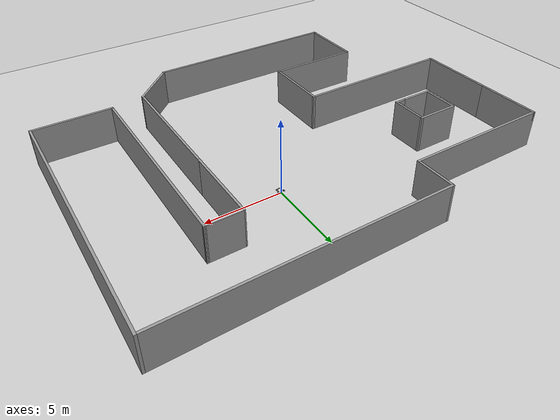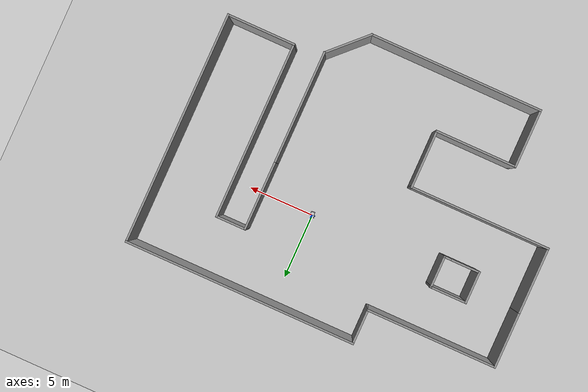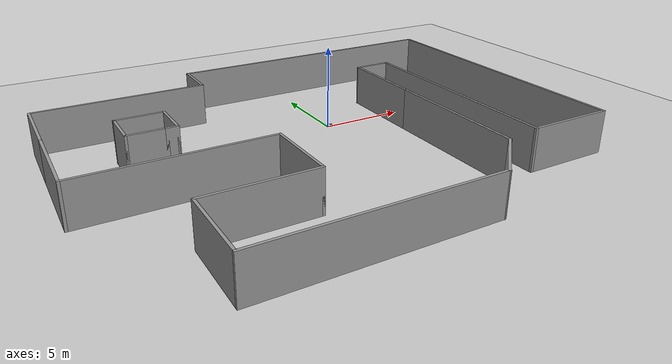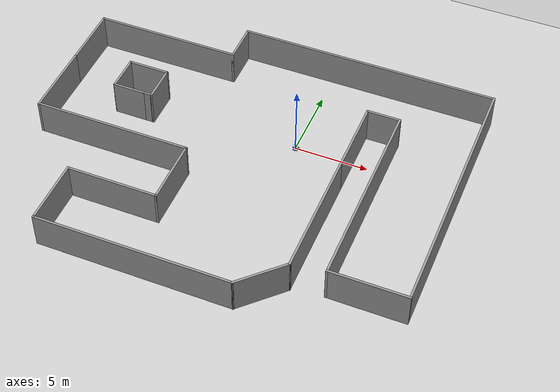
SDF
<sdf version="1.6">
 <world name="default">
  <light name="sun" type="directional">
   <pose>0 0 10 0 -0 0</pose>
   <diffuse>0.8 0.8 0.8 1</diffuse>
   <specular>0.2 0.2 0.2 1</specular>
   <attenuation>
    <range>1000</range>
    <constant>0.9</constant>
    <linear>0.01</linear>
    <quadratic>0.001</quadratic>
   </attenuation>
   <direction>-0.5 0.1 -0.9</direction>
  </light>
  <model name="ground_plane">
   <static>1</static>
   <link name="link">
    <collision name="collision">
     <geometry><plane><normal>0 0 1</normal><size>100 100</size></plane></geometry>
     <surface>
      <contact><collide_bitmask>65535</collide_bitmask></contact>
      <friction><ode><mu>100</mu><mu2>50</mu2></ode></friction>
     </surface>
    </collision>
    <visual name="visual">
     <cast_shadows>0</cast_shadows>
     <geometry><plane><normal>0 0 1</normal><size>100 100</size></plane></geometry>
     <material>
      <script><uri>file://media/materials/scripts/gazebo.material</uri><name>Gazebo/Grey</name></script>
     </material>
    </visual>
   </link>
  </model>
  <gravity>0 0 -9.8</gravity>
  <magnetic_field>6e-06 2.3e-05 -4.2e-05</magnetic_field>
  <atmosphere type="adiabatic"/>
  <physics name="default_physics" default="0" type="ode">
   <max_step_size>0.001</max_step_size>
   <real_time_factor>1</real_time_factor>
   <real_time_update_rate>1000</real_time_update_rate>
  </physics>
  <scene><ambient>0.4 0.4 0.4 1</ambient><background>0.7 0.7 0.7 1</background><shadows>1</shadows></scene>
  <audio><device>default</device></audio>
  <spherical_coordinates>
   <surface_model>EARTH_WGS84</surface_model>
   <latitude_deg>0</latitude_deg>
   <longitude_deg>0</longitude_deg>
   <elevation>0</elevation>
   <heading_deg>0</heading_deg>
  </spherical_coordinates>
  <model name="scuttle">
   <link name="base_link">
    <inertial>
     <pose>-0 0.022172 0.019464 0 -0 0</pose>
     <mass>3.90696</mass>
     <inertia>
      <ixx>0.0711158</ixx>
      <ixy>-8.93689e-18</ixy>
      <ixz>-3.32138e-18</ixz>
      <iyy>0.0440071</iyy>
      <iyz>-0.00388226</iyz>
      <izz>0.111021</izz>
     </inertia>
    </inertial>
    <collision name="base_link_collision">
     <geometry>
      <mesh>
       <scale>0.001 0.001 0.001</scale>
       <uri>/home/ros/catkin_ws/src/scuttle_description/meshes/base_link.stl</uri>
      </mesh>
     </geometry>
     <surface><friction><ode><mu>0.1</mu><mu2>0.1</mu2></ode></friction></surface>
    </collision>
    <collision name="base_link_fixed_joint_lump__lidar_1_collision_1">
     <pose>-0.13695 0.13695 0.001 0 0 -1.5708</pose>
     <geometry>
      <mesh>
       <scale>0.001 0.001 0.001</scale>
       <uri>/home/ros/catkin_ws/src/scuttle_description/meshes/lidar_1.stl</uri>
      </mesh>
     </geometry>
     <surface><friction><ode><mu>0.2</mu><mu2>0.2</mu2></ode></friction></surface>
    </collision>
    <visual name="base_link_visual">
     <geometry>
      <mesh>
       <scale>0.001 0.001 0.001</scale>
       <uri>/home/ros/catkin_ws/src/scuttle_description/meshes/base_link.stl</uri>
      </mesh>
     </geometry>
     <material>
      <script><name>Gazebo/Silver</name><uri>file://media/materials/scripts/gazebo.material</uri></script>
     </material>
    </visual>
    <visual name="base_link_fixed_joint_lump__lidar_1_visual_1">
     <pose>-0.13695 0.13695 0.001 0 0 -1.5708</pose>
     <geometry>
      <mesh>
       <scale>0.001 0.001 0.001</scale>
       <uri>/home/ros/catkin_ws/src/scuttle_description/meshes/lidar_1.stl</uri>
      </mesh>
     </geometry>
     <material>
      <script><name>Gazebo/Gray</name><uri>file://media/materials/scripts/gazebo.material</uri></script>
     </material>
    </visual>
    <self_collide>1</self_collide>
    <sensor name="head_hokuyo_sensor" type="gpu_ray">
     <visualize>1</visualize>
     <update_rate>15</update_rate>
     <ray>
      <scan>
       <horizontal>
        <samples>810</samples>
        <resolution>1</resolution>
        <min_angle>-2.35619</min_angle>
        <max_angle>2.35619</max_angle>
       </horizontal>
      </scan>
      <range><min>0.5</min><max>30</max><resolution>0.33</resolution></range>
      <noise><type>gaussian</type><mean>0</mean><stddev>0.01</stddev></noise>
     </ray>
     <plugin name="gazebo_ros_head_hokuyo_controller" filename="libgazebo_ros_gpu_laser.so">
      <topicName>/scan</topicName>
      <frameName>lidar_1</frameName>
      <robotNamespace>/</robotNamespace>
     </plugin>
     <pose>0 0.13695 0.031 0 0 -1.5708</pose>
    </sensor>
   </link>
   <link name="left_wheel_1">
    <pose>0.1524 0.1054 -0.028 0 -0 0</pose>
    <inertial>
     <pose>0.037125 0 0 0 -0 0</pose>
     <mass>0.553601</mass>
     <inertia>
      <ixx>0.000476</ixx>
      <ixy>0</ixy>
      <ixz>0</ixz>
      <iyy>0.000492</iyy>
      <iyz>0</iyz>
      <izz>0.000492</izz>
     </inertia>
    </inertial>
    <collision name="left_wheel_1_collision">
     <pose>-0.1524 -0.1054 0.028 0 -0 0</pose>
     <geometry>
      <mesh>
       <scale>0.001 0.001 0.001</scale>
       <uri>/home/ros/catkin_ws/src/scuttle_description/meshes/left_wheel_1.stl</uri>
      </mesh>
     </geometry>
     <surface><friction><ode><mu>0.9</mu><mu2>0.9</mu2></ode></friction></surface>
    </collision>
    <visual name="left_wheel_1_visual">
     <pose>-0.1524 -0.1054 0.028 0 -0 0</pose>
     <geometry>
      <mesh>
       <scale>0.001 0.001 0.001</scale>
       <uri>/home/ros/catkin_ws/src/scuttle_description/meshes/left_wheel_1.stl</uri>
      </mesh>
     </geometry>
     <material>
      <script><name>Gazebo/Blue</name><uri>file://media/materials/scripts/gazebo.material</uri></script>
     </material>
    </visual>
    <self_collide>1</self_collide>
   </link>
   <joint name="Rev4" type="revolute">
    <child>left_wheel_1</child>
    <parent>base_link</parent>
    <axis>
     <xyz>1 0 0</xyz>
     <limit><lower>-1e+16</lower><upper>1e+16</upper></limit>
     <dynamics><spring_reference>0</spring_reference><spring_stiffness>0</spring_stiffness></dynamics>
     <use_parent_model_frame>1</use_parent_model_frame>
    </axis>
   </joint>
   <link name="right_wheel_1">
    <pose>-0.1524 0.1054 -0.028 0 -0 0</pose>
    <inertial>
     <pose>-0.037125 0 0 0 -0 0</pose>
     <mass>0.553601</mass>
     <inertia>
      <ixx>0.000476</ixx>
      <ixy>-0</ixy>
      <ixz>0</ixz>
      <iyy>0.000492</iyy>
      <iyz>0</iyz>
      <izz>0.000492</izz>
     </inertia>
    </inertial>
    <collision name="right_wheel_1_collision">
     <pose>0.1524 -0.1054 0.028 0 -0 0</pose>
     <geometry>
      <mesh>
       <scale>0.001 0.001 0.001</scale>
       <uri>/home/ros/catkin_ws/src/scuttle_description/meshes/right_wheel_1.stl</uri>
      </mesh>
     </geometry>
     <surface><friction><ode><mu>0.9</mu><mu2>0.9</mu2></ode></friction></surface>
    </collision>
    <visual name="right_wheel_1_visual">
     <pose>0.1524 -0.1054 0.028 0 -0 0</pose>
     <geometry>
      <mesh>
       <scale>0.001 0.001 0.001</scale>
       <uri>/home/ros/catkin_ws/src/scuttle_description/meshes/right_wheel_1.stl</uri>
      </mesh>
     </geometry>
     <material>
      <script><name>Gazebo/Blue</name><uri>file://media/materials/scripts/gazebo.material</uri></script>
     </material>
    </visual>
    <self_collide>1</self_collide>
   </link>
   <joint name="Rev5" type="revolute">
    <child>right_wheel_1</child>
    <parent>base_link</parent>
    <axis>
     <xyz>1 0 0</xyz>
     <limit><lower>-1e+16</lower><upper>1e+16</upper></limit>
     <dynamics><spring_reference>0</spring_reference><spring_stiffness>0</spring_stiffness></dynamics>
     <use_parent_model_frame>1</use_parent_model_frame>
    </axis>
   </joint>
   <plugin name="control" filename="libgazebo_ros_control.so"><robotNamespace>/</robotNamespace></plugin>
   <static>0</static>
   <plugin name="differential_drive_controller" filename="libgazebo_ros_diff_drive.so">
    <updateRate>100</updateRate>
    <leftJoint>Rev4</leftJoint>
    <rightJoint>Rev5</rightJoint>
    <wheelSeparation>0.355</wheelSeparation>
    <wheelDiameter>0.0833</wheelDiameter>
    <wheelAcceleration>9.5</wheelAcceleration>
    <wheelTorque>0.34323275</wheelTorque>
    <commandTopic>cmd_vel</commandTopic>
    <odometryTopic>odom</odometryTopic>
    <odometryFrame>odom</odometryFrame>
    <robotBaseFrame>base_link</robotBaseFrame>
    <odometrySource>1</odometrySource>
    <publishWheelTF>1</publishWheelTF>
    <publishOdom>1</publishOdom>
    <publishWheelJointState>1</publishWheelJointState>
    <legacyMode>0</legacyMode>
    <robotNamespace>/</robotNamespace>
   </plugin>
   <pose>0.035901 -0.015139 0.069743 -2.2e-05 3.9e-05 0.102053</pose>
  </model>
  <model name="room_1">
   <pose>-2.49301 -3.29078 0 0 -0 0</pose>
   <link name="Wall_0">
    <collision name="Wall_0_Collision">
     <geometry><box><size>5.25 0.15 2.5</size></box></geometry>
     <pose>0 0 1.25 0 -0 0</pose>
    </collision>
    <visual name="Wall_0_Visual">
     <pose>0 0 1.25 0 -0 0</pose>
     <geometry><box><size>5.25 0.15 2.5</size></box></geometry>
     <material>
      <script><uri>file://media/materials/scripts/gazebo.material</uri><name>Gazebo/Grey</name></script>
      <ambient>1 1 1 1</ambient>
     </material>
     <meta><layer>0</layer></meta>
    </visual>
    <pose>6.42058 3.46112 0 0 -0 -1.5708</pose>
   </link>
   <link name="Wall_1">
    <collision name="Wall_1_Collision">
     <geometry><box><size>8.75 0.15 2.5</size></box></geometry>
     <pose>0 0 1.25 0 -0 0</pose>
    </collision>
    <visual name="Wall_1_Visual">
     <pose>0 0 1.25 0 -0 0</pose>
     <geometry><box><size>8.75 0.15 2.5</size></box></geometry>
     <material>
      <script><uri>file://media/materials/scripts/gazebo.material</uri><name>Gazebo/Grey</name></script>
      <ambient>1 1 1 1</ambient>
     </material>
     <meta><layer>0</layer></meta>
    </visual>
    <pose>6.42058 -3.38888 0 0 -0 -1.5708</pose>
   </link>
   <link name="Wall_11">
    <collision name="Wall_11_Collision">
     <geometry><box><size>4.25 0.15 2.5</size></box></geometry>
     <pose>0 0 1.25 0 -0 0</pose>
    </collision>
    <visual name="Wall_11_Visual">
     <pose>0 0 1.25 0 -0 0</pose>
     <geometry><box><size>4.25 0.15 2.5</size></box></geometry>
     <material>
      <script><uri>file://media/materials/scripts/gazebo.material</uri><name>Gazebo/Grey</name></script>
      <ambient>1 1 1 1</ambient>
     </material>
     <meta><layer>0</layer></meta>
    </visual>
    <pose>-13.725 5.61553 0 0 -0 1.5708</pose>
   </link>
   <link name="Wall_12">
    <collision name="Wall_12_Collision">
     <geometry><box><size>10 0.15 2.5</size></box></geometry>
     <pose>0 0 1.25 0 -0 0</pose>
    </collision>
    <visual name="Wall_12_Visual">
     <pose>0 0 1.25 0 -0 0</pose>
     <geometry><box><size>10 0.15 2.5</size></box></geometry>
     <material>
      <script><uri>file://media/materials/scripts/gazebo.material</uri><name>Gazebo/Grey</name></script>
      <ambient>1 1 1 1</ambient>
     </material>
     <meta><layer>0</layer></meta>
    </visual>
    <pose>-8.8 7.66553 0 0 -0 0</pose>
   </link>
   <link name="Wall_13">
    <collision name="Wall_13_Collision">
     <geometry><box><size>2.75 0.15 2.5</size></box></geometry>
     <pose>0 0 1.25 0 -0 0</pose>
    </collision>
    <visual name="Wall_13_Visual">
     <pose>0 0 1.25 0 -0 0</pose>
     <geometry><box><size>2.75 0.15 2.5</size></box></geometry>
     <material>
      <script><uri>file://media/materials/scripts/gazebo.material</uri><name>Gazebo/Grey</name></script>
      <ambient>1 1 1 1</ambient>
     </material>
     <meta><layer>0</layer></meta>
    </visual>
    <pose>-3.875 8.96553 0 0 -0 1.5708</pose>
   </link>
   <link name="Wall_14">
    <collision name="Wall_14_Collision">
     <geometry><box><size>17.75 0.15 2.5</size></box></geometry>
     <pose>0 0 1.25 0 -0 0</pose>
    </collision>
    <visual name="Wall_14_Visual">
     <pose>0 0 1.25 0 -0 0</pose>
     <geometry><box><size>17.75 0.15 2.5</size></box></geometry>
     <material>
      <script><uri>file://media/materials/scripts/gazebo.material</uri><name>Gazebo/Grey</name></script>
      <ambient>1 1 1 1</ambient>
     </material>
     <meta><layer>0</layer></meta>
    </visual>
    <pose>4.925 10.2655 0 0 -0 0</pose>
   </link>
   <link name="Wall_15">
    <collision name="Wall_15_Collision">
     <geometry><box><size>17.75 0.15 2.5</size></box></geometry>
     <pose>0 0 1.25 0 -0 0</pose>
    </collision>
    <visual name="Wall_15_Visual">
     <pose>0 0 1.25 0 -0 0</pose>
     <geometry><box><size>17.75 0.15 2.5</size></box></geometry>
     <material>
      <script><uri>file://media/materials/scripts/gazebo.material</uri><name>Gazebo/Grey</name></script>
      <ambient>1 1 1 1</ambient>
     </material>
     <meta><layer>0</layer></meta>
    </visual>
    <pose>13.725 1.46553 0 0 -0 -1.5708</pose>
   </link>
   <link name="Wall_16">
    <collision name="Wall_16_Collision">
     <geometry><box><size>5.25 0.15 2.5</size></box></geometry>
     <pose>0 0 1.25 0 -0 0</pose>
    </collision>
    <visual name="Wall_16_Visual">
     <pose>0 0 1.25 0 -0 0</pose>
     <geometry><box><size>5.25 0.15 2.5</size></box></geometry>
     <material>
      <script><uri>file://media/materials/scripts/gazebo.material</uri><name>Gazebo/Grey</name></script>
      <ambient>1 1 1 1</ambient>
     </material>
     <meta><layer>0</layer></meta>
    </visual>
    <pose>11.175 -7.33447 0 0 -0 3.14159</pose>
   </link>
   <link name="Wall_17">
    <collision name="Wall_17_Collision">
     <geometry><box><size>13.5 0.15 2.5</size></box></geometry>
     <pose>0 0 1.25 0 -0 0</pose>
    </collision>
    <visual name="Wall_17_Visual">
     <pose>0 0 1.25 0 -0 0</pose>
     <geometry><box><size>13.5 0.15 2.5</size></box></geometry>
     <material>
      <script><uri>file://media/materials/scripts/gazebo.material</uri><name>Gazebo/Grey</name></script>
      <ambient>1 1 1 1</ambient>
     </material>
     <meta><layer>0</layer></meta>
    </visual>
    <pose>8.625 -0.659467 0 0 -0 1.5708</pose>
   </link>
   <link name="Wall_18">
    <collision name="Wall_18_Collision">
     <geometry><box><size>2.35442 0.15 2.5</size></box></geometry>
     <pose>0 0 1.25 0 -0 0</pose>
    </collision>
    <visual name="Wall_18_Visual">
     <pose>0 0 1.25 0 -0 0</pose>
     <geometry><box><size>2.35442 0.15 2.5</size></box></geometry>
     <material>
      <script><uri>file://media/materials/scripts/gazebo.material</uri><name>Gazebo/Grey</name></script>
      <ambient>1 1 1 1</ambient>
     </material>
     <meta><layer>0</layer></meta>
    </visual>
    <pose>7.52279 6.01333 0 0 -0 -3.13959</pose>
   </link>
   <link name="Wall_2">
    <collision name="Wall_2_Collision">
     <geometry><box><size>3.75 0.15 2.5</size></box></geometry>
     <pose>0 0 1.25 0 -0 0</pose>
    </collision>
    <visual name="Wall_2_Visual">
     <pose>0 0 1.25 0 -0 0</pose>
     <geometry><box><size>3.75 0.15 2.5</size></box></geometry>
     <material>
      <script><uri>file://media/materials/scripts/gazebo.material</uri><name>Gazebo/Grey</name></script>
      <ambient>1 1 1 1</ambient>
     </material>
     <meta><layer>0</layer></meta>
    </visual>
    <pose>5.14779 -8.96167 0 0 -0 -2.35619</pose>
   </link>
   <link name="Wall_20">
    <collision name="Wall_20_Collision">
     <geometry><box><size>2.5 0.15 2.5</size></box></geometry>
     <pose>0 0 1.25 0 -0 0</pose>
    </collision>
    <visual name="Wall_20_Visual">
     <pose>0 0 1.25 0 -0 0</pose>
     <geometry><box><size>2.5 0.15 2.5</size></box></geometry>
     <material>
      <script><uri>file://media/materials/scripts/gazebo.material</uri><name>Gazebo/Grey</name></script>
      <ambient>1 1 1 1</ambient>
     </material>
     <meta><layer>0</layer></meta>
    </visual>
    <pose>-9.96918 3.17229 0 0 -0 -1.5708</pose>
   </link>
   <link name="Wall_26">
    <collision name="Wall_26_Collision">
     <geometry><box><size>2.25 0.15 2.5</size></box></geometry>
     <pose>0 0 1.25 0 -0 0</pose>
    </collision>
    <visual name="Wall_26_Visual">
     <pose>0 0 1.25 0 -0 0</pose>
     <geometry><box><size>2.25 0.15 2.5</size></box></geometry>
     <material>
      <script><uri>file://media/materials/scripts/gazebo.material</uri><name>Gazebo/Grey</name></script>
      <ambient>1 1 1 1</ambient>
     </material>
     <meta><layer>0</layer></meta>
    </visual>
    <pose>-8.91918 1.99729 0 0 -0 0</pose>
   </link>
   <link name="Wall_27">
    <collision name="Wall_27_Collision">
     <geometry><box><size>0.75 0.15 2.5</size></box></geometry>
     <pose>0 0 1.25 0 -0 0</pose>
    </collision>
    <visual name="Wall_27_Visual">
     <pose>0 0 1.25 0 -0 0</pose>
     <geometry><box><size>0.75 0.15 2.5</size></box></geometry>
     <material>
      <script><uri>file://media/materials/scripts/gazebo.material</uri><name>Gazebo/Grey</name></script>
      <ambient>1 1 1 1</ambient>
     </material>
     <meta><layer>0</layer></meta>
    </visual>
    <pose>-7.56918 1.99729 0 0 -0 0</pose>
   </link>
   <link name="Wall_28">
    <collision name="Wall_28_Collision">
     <geometry><box><size>2.5 0.15 2.5</size></box></geometry>
     <pose>0 0 1.25 0 -0 0</pose>
    </collision>
    <visual name="Wall_28_Visual">
     <pose>0 0 1.25 0 -0 0</pose>
     <geometry><box><size>2.5 0.15 2.5</size></box></geometry>
     <material>
      <script><uri>file://media/materials/scripts/gazebo.material</uri><name>Gazebo/Grey</name></script>
      <ambient>1 1 1 1</ambient>
     </material>
     <meta><layer>0</layer></meta>
    </visual>
    <pose>-7.26918 3.17229 0 0 -0 1.5708</pose>
   </link>
   <link name="Wall_29">
    <collision name="Wall_29_Collision">
     <geometry><box><size>2.85 0.15 2.5</size></box></geometry>
     <pose>0 0 1.25 0 -0 0</pose>
    </collision>
    <visual name="Wall_29_Visual">
     <pose>0 0 1.25 0 -0 0</pose>
     <geometry><box><size>2.85 0.15 2.5</size></box></geometry>
     <material>
      <script><uri>file://media/materials/scripts/gazebo.material</uri><name>Gazebo/Grey</name></script>
      <ambient>1 1 1 1</ambient>
     </material>
     <meta><layer>0</layer></meta>
    </visual>
    <pose>-8.61918 4.34729 0 0 -0 3.14159</pose>
   </link>
   <link name="Wall_3">
    <collision name="Wall_3_Collision">
     <geometry><box><size>13.25 0.15 2.5</size></box></geometry>
     <pose>0 0 1.25 0 -0 0</pose>
    </collision>
    <visual name="Wall_3_Visual">
     <pose>0 0 1.25 0 -0 0</pose>
     <geometry><box><size>13.25 0.15 2.5</size></box></geometry>
     <material>
      <script><uri>file://media/materials/scripts/gazebo.material</uri><name>Gazebo/Grey</name></script>
      <ambient>1 1 1 1</ambient>
     </material>
     <meta><layer>0</layer></meta>
    </visual>
    <pose>-2.675 -10.2345 0 0 -0 3.14159</pose>
   </link>
   <link name="Wall_4">
    <collision name="Wall_4_Collision">
     <geometry><box><size>4.5 0.15 2.5</size></box></geometry>
     <pose>0 0 1.25 0 -0 0</pose>
    </collision>
    <visual name="Wall_4_Visual">
     <pose>0 0 1.25 0 -0 0</pose>
     <geometry><box><size>4.5 0.15 2.5</size></box></geometry>
     <material>
      <script><uri>file://media/materials/scripts/gazebo.material</uri><name>Gazebo/Grey</name></script>
      <ambient>1 1 1 1</ambient>
     </material>
     <meta><layer>0</layer></meta>
    </visual>
    <pose>-9.225 -8.05947 0 0 -0 1.5708</pose>
   </link>
   <link name="Wall_5">
    <collision name="Wall_5_Collision">
     <geometry><box><size>6.25 0.15 2.5</size></box></geometry>
     <pose>0 0 1.25 0 -0 0</pose>
    </collision>
    <visual name="Wall_5_Visual">
     <pose>0 0 1.25 0 -0 0</pose>
     <geometry><box><size>6.25 0.15 2.5</size></box></geometry>
     <material>
      <script><uri>file://media/materials/scripts/gazebo.material</uri><name>Gazebo/Grey</name></script>
      <ambient>1 1 1 1</ambient>
     </material>
     <meta><layer>0</layer></meta>
    </visual>
    <pose>-6.175 -5.88447 0 0 -0 0</pose>
   </link>
   <link name="Wall_6">
    <collision name="Wall_6_Collision">
     <geometry><box><size>4.5 0.15 2.5</size></box></geometry>
     <pose>0 0 1.25 0 -0 0</pose>
    </collision>
    <visual name="Wall_6_Visual">
     <pose>0 0 1.25 0 -0 0</pose>
     <geometry><box><size>4.5 0.15 2.5</size></box></geometry>
     <material>
      <script><uri>file://media/materials/scripts/gazebo.material</uri><name>Gazebo/Grey</name></script>
      <ambient>1 1 1 1</ambient>
     </material>
     <meta><layer>0</layer></meta>
    </visual>
    <pose>-3.125 -3.70947 0 0 -0 1.5708</pose>
   </link>
   <link name="Wall_7">
    <collision name="Wall_7_Collision">
     <geometry><box><size>10.75 0.15 2.5</size></box></geometry>
     <pose>0 0 1.25 0 -0 0</pose>
    </collision>
    <visual name="Wall_7_Visual">
     <pose>0 0 1.25 0 -0 0</pose>
     <geometry><box><size>10.75 0.15 2.5</size></box></geometry>
     <material>
      <script><uri>file://media/materials/scripts/gazebo.material</uri><name>Gazebo/Grey</name></script>
      <ambient>1 1 1 1</ambient>
     </material>
     <meta><layer>0</layer></meta>
    </visual>
    <pose>-8.425 -1.53447 0 0 -0 3.14159</pose>
   </link>
   <link name="Wall_8">
    <collision name="Wall_8_Collision">
     <geometry><box><size>5.25 0.15 2.5</size></box></geometry>
     <pose>0 0 1.25 0 -0 0</pose>
    </collision>
    <visual name="Wall_8_Visual">
     <pose>0 0 1.25 0 -0 0</pose>
     <geometry><box><size>5.25 0.15 2.5</size></box></geometry>
     <material>
      <script><uri>file://media/materials/scripts/gazebo.material</uri><name>Gazebo/Grey</name></script>
      <ambient>1 1 1 1</ambient>
     </material>
     <meta><layer>0</layer></meta>
    </visual>
    <pose>-13.725 1.01553 0 0 -0 1.5708</pose>
   </link>
   <static>1</static>
  </model>
 </world>
</sdf>
